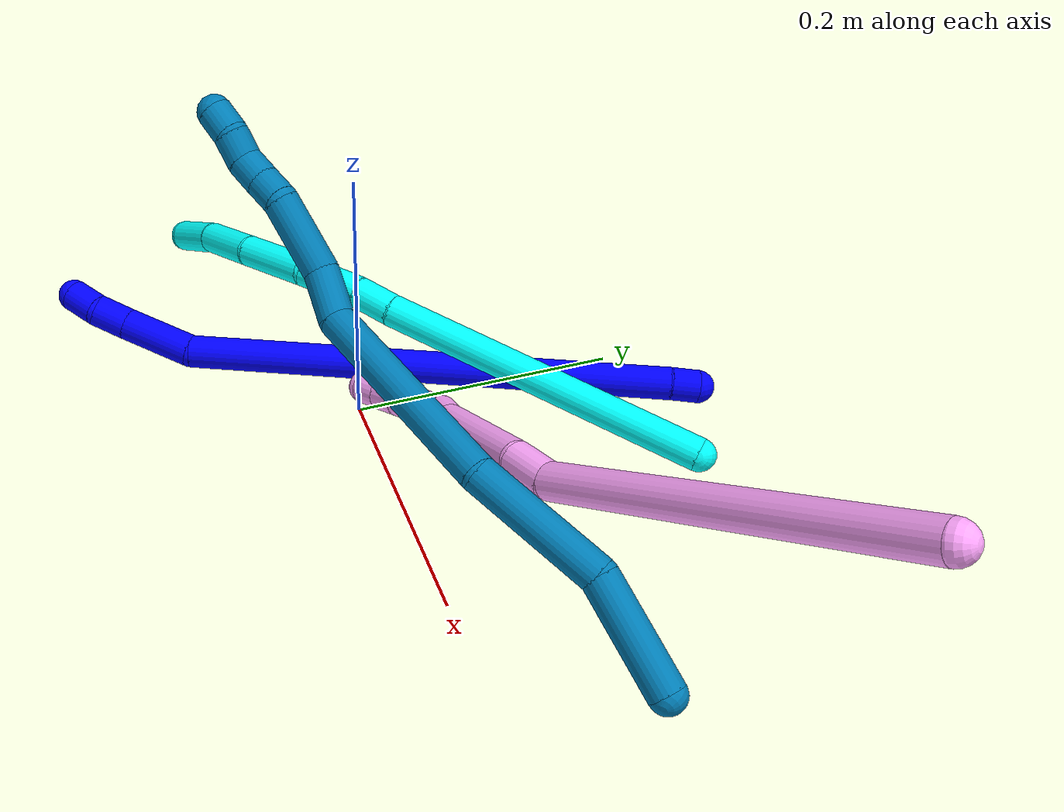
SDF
<sdf version="1.7">
 <world name="default">
  <model name="1">
   <static>0</static>
   <link name="1">
    <collision name="collision-cylinder-e_1_1_4">
     <pose>-0.003154 -0.008823 0.004397 1.10851 -0.309624 -0.192598</pose>
     <geometry><cylinder><radius>0.0125</radius><length>0.0207</length></cylinder></geometry>
     <surface>
      <friction><ode><mu>1.16</mu><mu2>1.16</mu2><slip1>0</slip1><slip2>0</slip2></ode></friction>
      <contact><ode><kp>1e+06</kp><kd>1</kd><max_vel>0</max_vel><min_depth>0.001</min_depth></ode></contact>
     </surface>
    </collision>
    <visual name="visual-cylinder-e_1_1_4">
     <pose>-0.003154 -0.008823 0.004397 1.10851 -0.309624 -0.192598</pose>
     <geometry><cylinder><radius>0.0125</radius><length>0.0207</length></cylinder></geometry>
     <material><ambient>0 0 1 1</ambient></material>
    </visual>
    <collision name="collision-cylinder-e_2_4_5">
     <pose>-0.07992 -0.168412 0.085722 1.09898 -0.410235 -0.253447</pose>
     <geometry><cylinder><radius>0.0125</radius><length>0.369146</length></cylinder></geometry>
     <surface>
      <friction><ode><mu>1.16</mu><mu2>1.16</mu2><slip1>0</slip1><slip2>0</slip2></ode></friction>
      <contact><ode><kp>1e+06</kp><kd>1</kd><max_vel>0</max_vel><min_depth>0.001</min_depth></ode></contact>
     </surface>
    </collision>
    <visual name="visual-cylinder-e_2_4_5">
     <pose>-0.07992 -0.168412 0.085722 1.09898 -0.410235 -0.253447</pose>
     <geometry><cylinder><radius>0.0125</radius><length>0.369146</length></cylinder></geometry>
     <material><ambient>0 0 1 1</ambient></material>
    </visual>
    <collision name="collision-cylinder-e_3_5_6">
     <pose>-0.164444 -0.336703 0.183015 0.710622 -0.385794 -0.144702</pose>
     <geometry><cylinder><radius>0.0125</radius><length>0.057996</length></cylinder></geometry>
     <surface>
      <friction><ode><mu>1.16</mu><mu2>1.16</mu2><slip1>0</slip1><slip2>0</slip2></ode></friction>
      <contact><ode><kp>1e+06</kp><kd>1</kd><max_vel>0</max_vel><min_depth>0.001</min_depth></ode></contact>
     </surface>
    </collision>
    <visual name="visual-cylinder-e_3_5_6">
     <pose>-0.164444 -0.336703 0.183015 0.710622 -0.385794 -0.144702</pose>
     <geometry><cylinder><radius>0.0125</radius><length>0.057996</length></cylinder></geometry>
     <material><ambient>0 0 1 1</ambient></material>
    </visual>
    <collision name="collision-cylinder-e_4_6_7">
     <pose>-0.177778 -0.363708 0.212545 0.802185 -0.181674 -0.077219</pose>
     <geometry><cylinder><radius>0.0125</radius><length>0.026814</length></cylinder></geometry>
     <surface>
      <friction><ode><mu>1.16</mu><mu2>1.16</mu2><slip1>0</slip1><slip2>0</slip2></ode></friction>
      <contact><ode><kp>1e+06</kp><kd>1</kd><max_vel>0</max_vel><min_depth>0.001</min_depth></ode></contact>
     </surface>
    </collision>
    <visual name="visual-cylinder-e_4_6_7">
     <pose>-0.177778 -0.363708 0.212545 0.802185 -0.181674 -0.077219</pose>
     <geometry><cylinder><radius>0.0125</radius><length>0.026814</length></cylinder></geometry>
     <material><ambient>0 0 1 1</ambient></material>
    </visual>
    <collision name="collision-cylinder-e_5_7_2">
     <pose>-0.18513 -0.378946 0.231866 0.515874 -0.399573 -0.106737</pose>
     <geometry><cylinder><radius>0.0125</radius><length>0.025344</length></cylinder></geometry>
     <surface>
      <friction><ode><mu>1.16</mu><mu2>1.16</mu2><slip1>0</slip1><slip2>0</slip2></ode></friction>
      <contact><ode><kp>1e+06</kp><kd>1</kd><max_vel>0</max_vel><min_depth>0.001</min_depth></ode></contact>
     </surface>
    </collision>
    <visual name="visual-cylinder-e_5_7_2">
     <pose>-0.18513 -0.378946 0.231866 0.515874 -0.399573 -0.106737</pose>
     <geometry><cylinder><radius>0.0125</radius><length>0.025344</length></cylinder></geometry>
     <material><ambient>0 0 1 1</ambient></material>
    </visual>
    <collision name="collision-sphere-2">
     <pose>-0.19006 -0.384704 0.242021 0 -0 0</pose>
     <geometry><sphere><radius>0.0125</radius></sphere></geometry>
     <surface>
      <friction><ode><mu>1.16</mu><mu2>1.16</mu2><slip1>0</slip1><slip2>0</slip2></ode></friction>
      <contact><ode><kp>1e+06</kp><kd>1</kd><max_vel>0</max_vel><min_depth>0.001</min_depth></ode></contact>
     </surface>
    </collision>
    <visual name="visual-sphere-2">
     <pose>-0.19006 -0.384704 0.242021 0 -0 0</pose>
     <geometry><sphere><radius>0.0125</radius></sphere></geometry>
     <material><ambient>0 0 1 1</ambient></material>
    </visual>
    <collision name="collision-sphere-7">
     <pose>-0.1802 -0.373187 0.221712 0 -0 0</pose>
     <geometry><sphere><radius>0.0125</radius></sphere></geometry>
     <surface>
      <friction><ode><mu>1.16</mu><mu2>1.16</mu2><slip1>0</slip1><slip2>0</slip2></ode></friction>
      <contact><ode><kp>1e+06</kp><kd>1</kd><max_vel>0</max_vel><min_depth>0.001</min_depth></ode></contact>
     </surface>
    </collision>
    <visual name="visual-sphere-7">
     <pose>-0.1802 -0.373187 0.221712 0 -0 0</pose>
     <geometry><sphere><radius>0.0125</radius></sphere></geometry>
     <material><ambient>0 0 1 1</ambient></material>
    </visual>
    <collision name="collision-sphere-6">
     <pose>-0.175356 -0.354228 0.203379 0 -0 0</pose>
     <geometry><sphere><radius>0.0125</radius></sphere></geometry>
     <surface>
      <friction><ode><mu>1.16</mu><mu2>1.16</mu2><slip1>0</slip1><slip2>0</slip2></ode></friction>
      <contact><ode><kp>1e+06</kp><kd>1</kd><max_vel>0</max_vel><min_depth>0.001</min_depth></ode></contact>
     </surface>
    </collision>
    <visual name="visual-sphere-6">
     <pose>-0.175356 -0.354228 0.203379 0 -0 0</pose>
     <geometry><sphere><radius>0.0125</radius></sphere></geometry>
     <material><ambient>0 0 1 1</ambient></material>
    </visual>
    <collision name="collision-sphere-5">
     <pose>-0.153532 -0.319178 0.162652 0 -0 0</pose>
     <geometry><sphere><radius>0.0125</radius></sphere></geometry>
     <surface>
      <friction><ode><mu>1.16</mu><mu2>1.16</mu2><slip1>0</slip1><slip2>0</slip2></ode></friction>
      <contact><ode><kp>1e+06</kp><kd>1</kd><max_vel>0</max_vel><min_depth>0.001</min_depth></ode></contact>
     </surface>
    </collision>
    <visual name="visual-sphere-5">
     <pose>-0.153532 -0.319178 0.162652 0 -0 0</pose>
     <geometry><sphere><radius>0.0125</radius></sphere></geometry>
     <material><ambient>0 0 1 1</ambient></material>
    </visual>
    <collision name="collision-sphere-1">
     <geometry><sphere><radius>0.0125</radius></sphere></geometry>
     <surface>
      <friction><ode><mu>1.16</mu><mu2>1.16</mu2><slip1>0</slip1><slip2>0</slip2></ode></friction>
      <contact><ode><kp>1e+06</kp><kd>1</kd><max_vel>0</max_vel><min_depth>0.001</min_depth></ode></contact>
     </surface>
    </collision>
    <visual name="visual-sphere-1">
     <geometry><sphere><radius>0.0125</radius></sphere></geometry>
     <material><ambient>0 0 1 1</ambient></material>
    </visual>
    <collision name="collision-sphere-4">
     <pose>-0.006307 -0.017646 0.008793 0 -0 0</pose>
     <geometry><sphere><radius>0.0125</radius></sphere></geometry>
     <surface>
      <friction><ode><mu>1.16</mu><mu2>1.16</mu2><slip1>0</slip1><slip2>0</slip2></ode></friction>
      <contact><ode><kp>1e+06</kp><kd>1</kd><max_vel>0</max_vel><min_depth>0.001</min_depth></ode></contact>
     </surface>
    </collision>
    <visual name="visual-sphere-4">
     <pose>-0.006307 -0.017646 0.008793 0 -0 0</pose>
     <geometry><sphere><radius>0.0125</radius></sphere></geometry>
     <material><ambient>0 0 1 1</ambient></material>
    </visual>
    <inertial>
     <pose>-0.097127 -0.20247 0.10785 0 -0 0</pose>
     <mass>0.5</mass>
     <inertia>
      <ixx>0.002772</ixx>
      <ixy>0</ixy>
      <ixz>0</ixz>
      <iyy>0.001244</iyy>
      <iyz>0</iyz>
      <izz>0.005157</izz>
     </inertia>
    </inertial>
   </link>
   <pose>0.064402 0.247692 0.011495 -0.297336 -1.01832 0.432797</pose>
  </model>
  <model name="3">
   <static>0</static>
   <link name="3">
    <collision name="collision-cylinder-e_1_1_4">
     <pose>-0.047762 -0.117275 0.005535 1.52363 -0.386363 -0.368968</pose>
     <geometry><cylinder><radius>0.0125</radius><length>0.253499</length></cylinder></geometry>
     <surface>
      <friction><ode><mu>1.16</mu><mu2>1.16</mu2><slip1>0</slip1><slip2>0</slip2></ode></friction>
      <contact><ode><kp>1e+06</kp><kd>1</kd><max_vel>0</max_vel><min_depth>0.001</min_depth></ode></contact>
     </surface>
    </collision>
    <visual name="visual-cylinder-e_1_1_4">
     <pose>-0.047762 -0.117275 0.005535 1.52363 -0.386363 -0.368968</pose>
     <geometry><cylinder><radius>0.0125</radius><length>0.253499</length></cylinder></geometry>
     <material><ambient>0.003922 1 0.996078 1</ambient></material>
    </visual>
    <collision name="collision-cylinder-e_2_4_5">
     <pose>-0.100873 -0.249283 0.013206 1.42684 -0.344972 -0.299314</pose>
     <geometry><cylinder><radius>0.0125</radius><length>0.031637</length></cylinder></geometry>
     <surface>
      <friction><ode><mu>1.16</mu><mu2>1.16</mu2><slip1>0</slip1><slip2>0</slip2></ode></friction>
      <contact><ode><kp>1e+06</kp><kd>1</kd><max_vel>0</max_vel><min_depth>0.001</min_depth></ode></contact>
     </surface>
    </collision>
    <visual name="visual-cylinder-e_2_4_5">
     <pose>-0.100873 -0.249283 0.013206 1.42684 -0.344972 -0.299314</pose>
     <geometry><cylinder><radius>0.0125</radius><length>0.031637</length></cylinder></geometry>
     <material><ambient>0.003922 1 0.996078 1</ambient></material>
    </visual>
    <collision name="collision-cylinder-e_3_5_6">
     <pose>-0.116837 -0.286062 0.017229 1.48538 -0.447291 -0.4117</pose>
     <geometry><cylinder><radius>0.0125</radius><length>0.049083</length></cylinder></geometry>
     <surface>
      <friction><ode><mu>1.16</mu><mu2>1.16</mu2><slip1>0</slip1><slip2>0</slip2></ode></friction>
      <contact><ode><kp>1e+06</kp><kd>1</kd><max_vel>0</max_vel><min_depth>0.001</min_depth></ode></contact>
     </surface>
    </collision>
    <visual name="visual-cylinder-e_3_5_6">
     <pose>-0.116837 -0.286062 0.017229 1.48538 -0.447291 -0.4117</pose>
     <geometry><cylinder><radius>0.0125</radius><length>0.049083</length></cylinder></geometry>
     <material><ambient>0.003922 1 0.996078 1</ambient></material>
    </visual>
    <collision name="collision-cylinder-e_4_6_7">
     <pose>-0.141863 -0.333016 0.030416 1.14489 -0.484948 -0.316126</pose>
     <geometry><cylinder><radius>0.0125</radius><length>0.061829</length></cylinder></geometry>
     <surface>
      <friction><ode><mu>1.16</mu><mu2>1.16</mu2><slip1>0</slip1><slip2>0</slip2></ode></friction>
      <contact><ode><kp>1e+06</kp><kd>1</kd><max_vel>0</max_vel><min_depth>0.001</min_depth></ode></contact>
     </surface>
    </collision>
    <visual name="visual-cylinder-e_4_6_7">
     <pose>-0.141863 -0.333016 0.030416 1.14489 -0.484948 -0.316126</pose>
     <geometry><cylinder><radius>0.0125</radius><length>0.061829</length></cylinder></geometry>
     <material><ambient>0.003922 1 0.996078 1</ambient></material>
    </visual>
    <collision name="collision-cylinder-e_5_7_8">
     <pose>-0.168846 -0.378027 0.056852 0.925435 -0.463289 -0.234253</pose>
     <geometry><cylinder><radius>0.0125</radius><length>0.056262</length></cylinder></geometry>
     <surface>
      <friction><ode><mu>1.16</mu><mu2>1.16</mu2><slip1>0</slip1><slip2>0</slip2></ode></friction>
      <contact><ode><kp>1e+06</kp><kd>1</kd><max_vel>0</max_vel><min_depth>0.001</min_depth></ode></contact>
     </surface>
    </collision>
    <visual name="visual-cylinder-e_5_7_8">
     <pose>-0.168846 -0.378027 0.056852 0.925435 -0.463289 -0.234253</pose>
     <geometry><cylinder><radius>0.0125</radius><length>0.056262</length></cylinder></geometry>
     <material><ambient>0.003922 1 0.996078 1</ambient></material>
    </visual>
    <collision name="collision-cylinder-e_6_8_2">
     <pose>-0.19454 -0.412566 0.085702 0.811017 -0.582737 -0.25609</pose>
     <geometry><cylinder><radius>0.0125</radius><length>0.04769</length></cylinder></geometry>
     <surface>
      <friction><ode><mu>1.16</mu><mu2>1.16</mu2><slip1>0</slip1><slip2>0</slip2></ode></friction>
      <contact><ode><kp>1e+06</kp><kd>1</kd><max_vel>0</max_vel><min_depth>0.001</min_depth></ode></contact>
     </surface>
    </collision>
    <visual name="visual-cylinder-e_6_8_2">
     <pose>-0.19454 -0.412566 0.085702 0.811017 -0.582737 -0.25609</pose>
     <geometry><cylinder><radius>0.0125</radius><length>0.04769</length></cylinder></geometry>
     <material><ambient>0.003922 1 0.996078 1</ambient></material>
    </visual>
    <collision name="collision-sphere-2">
     <pose>-0.207662 -0.427 0.099415 0 -0 0</pose>
     <geometry><sphere><radius>0.0125</radius></sphere></geometry>
     <surface>
      <friction><ode><mu>1.16</mu><mu2>1.16</mu2><slip1>0</slip1><slip2>0</slip2></ode></friction>
      <contact><ode><kp>1e+06</kp><kd>1</kd><max_vel>0</max_vel><min_depth>0.001</min_depth></ode></contact>
     </surface>
    </collision>
    <visual name="visual-sphere-2">
     <pose>-0.207662 -0.427 0.099415 0 -0 0</pose>
     <geometry><sphere><radius>0.0125</radius></sphere></geometry>
     <material><ambient>0.003922 1 0.996078 1</ambient></material>
    </visual>
    <collision name="collision-sphere-4">
     <pose>-0.095524 -0.234551 0.01107 0 -0 0</pose>
     <geometry><sphere><radius>0.0125</radius></sphere></geometry>
     <surface>
      <friction><ode><mu>1.16</mu><mu2>1.16</mu2><slip1>0</slip1><slip2>0</slip2></ode></friction>
      <contact><ode><kp>1e+06</kp><kd>1</kd><max_vel>0</max_vel><min_depth>0.001</min_depth></ode></contact>
     </surface>
    </collision>
    <visual name="visual-sphere-4">
     <pose>-0.095524 -0.234551 0.01107 0 -0 0</pose>
     <geometry><sphere><radius>0.0125</radius></sphere></geometry>
     <material><ambient>0.003922 1 0.996078 1</ambient></material>
    </visual>
    <collision name="collision-sphere-1">
     <geometry><sphere><radius>0.0125</radius></sphere></geometry>
     <surface>
      <friction><ode><mu>1.16</mu><mu2>1.16</mu2><slip1>0</slip1><slip2>0</slip2></ode></friction>
      <contact><ode><kp>1e+06</kp><kd>1</kd><max_vel>0</max_vel><min_depth>0.001</min_depth></ode></contact>
     </surface>
    </collision>
    <visual name="visual-sphere-1">
     <geometry><sphere><radius>0.0125</radius></sphere></geometry>
     <material><ambient>0.003922 1 0.996078 1</ambient></material>
    </visual>
    <collision name="collision-sphere-8">
     <pose>-0.181418 -0.398132 0.071989 0 -0 0</pose>
     <geometry><sphere><radius>0.0125</radius></sphere></geometry>
     <surface>
      <friction><ode><mu>1.16</mu><mu2>1.16</mu2><slip1>0</slip1><slip2>0</slip2></ode></friction>
      <contact><ode><kp>1e+06</kp><kd>1</kd><max_vel>0</max_vel><min_depth>0.001</min_depth></ode></contact>
     </surface>
    </collision>
    <visual name="visual-sphere-8">
     <pose>-0.181418 -0.398132 0.071989 0 -0 0</pose>
     <geometry><sphere><radius>0.0125</radius></sphere></geometry>
     <material><ambient>0.003922 1 0.996078 1</ambient></material>
    </visual>
    <collision name="collision-sphere-5">
     <pose>-0.106222 -0.264016 0.015341 0 -0 0</pose>
     <geometry><sphere><radius>0.0125</radius></sphere></geometry>
     <surface>
      <friction><ode><mu>1.16</mu><mu2>1.16</mu2><slip1>0</slip1><slip2>0</slip2></ode></friction>
      <contact><ode><kp>1e+06</kp><kd>1</kd><max_vel>0</max_vel><min_depth>0.001</min_depth></ode></contact>
     </surface>
    </collision>
    <visual name="visual-sphere-5">
     <pose>-0.106222 -0.264016 0.015341 0 -0 0</pose>
     <geometry><sphere><radius>0.0125</radius></sphere></geometry>
     <material><ambient>0.003922 1 0.996078 1</ambient></material>
    </visual>
    <collision name="collision-sphere-6">
     <pose>-0.127452 -0.308109 0.019117 0 -0 0</pose>
     <geometry><sphere><radius>0.0125</radius></sphere></geometry>
     <surface>
      <friction><ode><mu>1.16</mu><mu2>1.16</mu2><slip1>0</slip1><slip2>0</slip2></ode></friction>
      <contact><ode><kp>1e+06</kp><kd>1</kd><max_vel>0</max_vel><min_depth>0.001</min_depth></ode></contact>
     </surface>
    </collision>
    <visual name="visual-sphere-6">
     <pose>-0.127452 -0.308109 0.019117 0 -0 0</pose>
     <geometry><sphere><radius>0.0125</radius></sphere></geometry>
     <material><ambient>0.003922 1 0.996078 1</ambient></material>
    </visual>
    <collision name="collision-sphere-7">
     <pose>-0.156275 -0.357923 0.041716 0 -0 0</pose>
     <geometry><sphere><radius>0.0125</radius></sphere></geometry>
     <surface>
      <friction><ode><mu>1.16</mu><mu2>1.16</mu2><slip1>0</slip1><slip2>0</slip2></ode></friction>
      <contact><ode><kp>1e+06</kp><kd>1</kd><max_vel>0</max_vel><min_depth>0.001</min_depth></ode></contact>
     </surface>
    </collision>
    <visual name="visual-sphere-7">
     <pose>-0.156275 -0.357923 0.041716 0 -0 0</pose>
     <geometry><sphere><radius>0.0125</radius></sphere></geometry>
     <material><ambient>0.003922 1 0.996078 1</ambient></material>
    </visual>
    <inertial>
     <pose>-0.097164 -0.226381 0.023666 0 -0 0</pose>
     <mass>0.5</mass>
     <inertia>
      <ixx>0.000747</ixx>
      <ixy>0</ixy>
      <ixz>0</ixz>
      <iyy>-0.000226</iyy>
      <iyz>0</iyz>
      <izz>0.001869</izz>
     </inertia>
    </inertial>
   </link>
   <pose>0.132225 0.214219 0.011496 -2.43246 -0.773104 1.58792</pose>
  </model>
  <model name="4">
   <static>0</static>
   <link name="4">
    <collision name="collision-cylinder-e_1_1_4">
     <pose>-0.01844 -0.004862 -0.130784 3.10444 -0.139975 -2.62342</pose>
     <geometry><cylinder><radius>0.0125</radius><length>0.264334</length></cylinder></geometry>
     <surface>
      <friction><ode><mu>1.16</mu><mu2>1.16</mu2><slip1>0</slip1><slip2>0</slip2></ode></friction>
      <contact><ode><kp>1e+06</kp><kd>1</kd><max_vel>0</max_vel><min_depth>0.001</min_depth></ode></contact>
     </surface>
    </collision>
    <visual name="visual-cylinder-e_1_1_4">
     <pose>-0.01844 -0.004862 -0.130784 3.10444 -0.139975 -2.62342</pose>
     <geometry><cylinder><radius>0.0125</radius><length>0.264334</length></cylinder></geometry>
     <material><ambient>1 0.65098 0.996078 1</ambient></material>
    </visual>
    <collision name="collision-cylinder-e_2_4_5">
     <pose>-0.039247 -0.015658 -0.276804 2.77016 -0.143776 -0.732026</pose>
     <geometry><cylinder><radius>0.0125</radius><length>0.033043</length></cylinder></geometry>
     <surface>
      <friction><ode><mu>1.16</mu><mu2>1.16</mu2><slip1>0</slip1><slip2>0</slip2></ode></friction>
      <contact><ode><kp>1e+06</kp><kd>1</kd><max_vel>0</max_vel><min_depth>0.001</min_depth></ode></contact>
     </surface>
    </collision>
    <visual name="visual-cylinder-e_2_4_5">
     <pose>-0.039247 -0.015658 -0.276804 2.77016 -0.143776 -0.732026</pose>
     <geometry><cylinder><radius>0.0125</radius><length>0.033043</length></cylinder></geometry>
     <material><ambient>1 0.65098 0.996078 1</ambient></material>
    </visual>
    <collision name="collision-cylinder-e_3_5_6">
     <pose>-0.058869 -0.0329 -0.336305 2.89149 -0.361127 -1.93551</pose>
     <geometry><cylinder><radius>0.0125</radius><length>0.097675</length></cylinder></geometry>
     <surface>
      <friction><ode><mu>1.16</mu><mu2>1.16</mu2><slip1>0</slip1><slip2>0</slip2></ode></friction>
      <contact><ode><kp>1e+06</kp><kd>1</kd><max_vel>0</max_vel><min_depth>0.001</min_depth></ode></contact>
     </surface>
    </collision>
    <visual name="visual-cylinder-e_3_5_6">
     <pose>-0.058869 -0.0329 -0.336305 2.89149 -0.361127 -1.93551</pose>
     <geometry><cylinder><radius>0.0125</radius><length>0.097675</length></cylinder></geometry>
     <material><ambient>1 0.65098 0.996078 1</ambient></material>
    </visual>
    <collision name="collision-cylinder-e_4_6_7">
     <pose>-0.081125 -0.047482 -0.389715 2.79779 -0.475419 -1.89808</pose>
     <geometry><cylinder><radius>0.0125</radius><length>0.021847</length></cylinder></geometry>
     <surface>
      <friction><ode><mu>1.16</mu><mu2>1.16</mu2><slip1>0</slip1><slip2>0</slip2></ode></friction>
      <contact><ode><kp>1e+06</kp><kd>1</kd><max_vel>0</max_vel><min_depth>0.001</min_depth></ode></contact>
     </surface>
    </collision>
    <visual name="visual-cylinder-e_4_6_7">
     <pose>-0.081125 -0.047482 -0.389715 2.79779 -0.475419 -1.89808</pose>
     <geometry><cylinder><radius>0.0125</radius><length>0.021847</length></cylinder></geometry>
     <material><ambient>1 0.65098 0.996078 1</ambient></material>
    </visual>
    <collision name="collision-cylinder-e_5_7_8">
     <pose>-0.086396 -0.052563 -0.408747 2.96075 -0.027052 -0.296196</pose>
     <geometry><cylinder><radius>0.0125</radius><length>0.020111</length></cylinder></geometry>
     <surface>
      <friction><ode><mu>1.16</mu><mu2>1.16</mu2><slip1>0</slip1><slip2>0</slip2></ode></friction>
      <contact><ode><kp>1e+06</kp><kd>1</kd><max_vel>0</max_vel><min_depth>0.001</min_depth></ode></contact>
     </surface>
    </collision>
    <visual name="visual-cylinder-e_5_7_8">
     <pose>-0.086396 -0.052563 -0.408747 2.96075 -0.027052 -0.296196</pose>
     <geometry><cylinder><radius>0.0125</radius><length>0.020111</length></cylinder></geometry>
     <material><ambient>1 0.65098 0.996078 1</ambient></material>
    </visual>
    <collision name="collision-cylinder-e_6_8_9">
     <pose>-0.087123 -0.05643 -0.429714 2.95786 -0.040313 -0.430849</pose>
     <geometry><cylinder><radius>0.0125</radius><length>0.022557</length></cylinder></geometry>
     <surface>
      <friction><ode><mu>1.16</mu><mu2>1.16</mu2><slip1>0</slip1><slip2>0</slip2></ode></friction>
      <contact><ode><kp>1e+06</kp><kd>1</kd><max_vel>0</max_vel><min_depth>0.001</min_depth></ode></contact>
     </surface>
    </collision>
    <visual name="visual-cylinder-e_6_8_9">
     <pose>-0.087123 -0.05643 -0.429714 2.95786 -0.040313 -0.430849</pose>
     <geometry><cylinder><radius>0.0125</radius><length>0.022557</length></cylinder></geometry>
     <material><ambient>1 0.65098 0.996078 1</ambient></material>
    </visual>
    <collision name="collision-cylinder-e_7_9_10">
     <pose>-0.08855 -0.060448 -0.450659 2.94553 -0.096421 -0.912192</pose>
     <geometry><cylinder><radius>0.0125</radius><length>0.02021</length></cylinder></geometry>
     <surface>
      <friction><ode><mu>1.16</mu><mu2>1.16</mu2><slip1>0</slip1><slip2>0</slip2></ode></friction>
      <contact><ode><kp>1e+06</kp><kd>1</kd><max_vel>0</max_vel><min_depth>0.001</min_depth></ode></contact>
     </surface>
    </collision>
    <visual name="visual-cylinder-e_7_9_10">
     <pose>-0.08855 -0.060448 -0.450659 2.94553 -0.096421 -0.912192</pose>
     <geometry><cylinder><radius>0.0125</radius><length>0.02021</length></cylinder></geometry>
     <material><ambient>1 0.65098 0.996078 1</ambient></material>
    </visual>
    <collision name="collision-cylinder-e_8_10_2">
     <pose>-0.090146 -0.064574 -0.470382 2.92527 -0.061665 -0.553485</pose>
     <geometry><cylinder><radius>0.0125</radius><length>0.020225</length></cylinder></geometry>
     <surface>
      <friction><ode><mu>1.16</mu><mu2>1.16</mu2><slip1>0</slip1><slip2>0</slip2></ode></friction>
      <contact><ode><kp>1e+06</kp><kd>1</kd><max_vel>0</max_vel><min_depth>0.001</min_depth></ode></contact>
     </surface>
    </collision>
    <visual name="visual-cylinder-e_8_10_2">
     <pose>-0.090146 -0.064574 -0.470382 2.92527 -0.061665 -0.553485</pose>
     <geometry><cylinder><radius>0.0125</radius><length>0.020225</length></cylinder></geometry>
     <material><ambient>1 0.65098 0.996078 1</ambient></material>
    </visual>
    <collision name="collision-sphere-2">
     <pose>-0.090769 -0.06674 -0.48024 0 -0 0</pose>
     <geometry><sphere><radius>0.0125</radius></sphere></geometry>
     <surface>
      <friction><ode><mu>1.16</mu><mu2>1.16</mu2><slip1>0</slip1><slip2>0</slip2></ode></friction>
      <contact><ode><kp>1e+06</kp><kd>1</kd><max_vel>0</max_vel><min_depth>0.001</min_depth></ode></contact>
     </surface>
    </collision>
    <visual name="visual-sphere-2">
     <pose>-0.090769 -0.06674 -0.48024 0 -0 0</pose>
     <geometry><sphere><radius>0.0125</radius></sphere></geometry>
     <material><ambient>1 0.65098 0.996078 1</ambient></material>
    </visual>
    <collision name="collision-sphere-10">
     <pose>-0.089523 -0.062408 -0.460524 0 -0 0</pose>
     <geometry><sphere><radius>0.0125</radius></sphere></geometry>
     <surface>
      <friction><ode><mu>1.16</mu><mu2>1.16</mu2><slip1>0</slip1><slip2>0</slip2></ode></friction>
      <contact><ode><kp>1e+06</kp><kd>1</kd><max_vel>0</max_vel><min_depth>0.001</min_depth></ode></contact>
     </surface>
    </collision>
    <visual name="visual-sphere-10">
     <pose>-0.089523 -0.062408 -0.460524 0 -0 0</pose>
     <geometry><sphere><radius>0.0125</radius></sphere></geometry>
     <material><ambient>1 0.65098 0.996078 1</ambient></material>
    </visual>
    <collision name="collision-sphere-9">
     <pose>-0.087577 -0.058489 -0.440794 0 -0 0</pose>
     <geometry><sphere><radius>0.0125</radius></sphere></geometry>
     <surface>
      <friction><ode><mu>1.16</mu><mu2>1.16</mu2><slip1>0</slip1><slip2>0</slip2></ode></friction>
      <contact><ode><kp>1e+06</kp><kd>1</kd><max_vel>0</max_vel><min_depth>0.001</min_depth></ode></contact>
     </surface>
    </collision>
    <visual name="visual-sphere-9">
     <pose>-0.087577 -0.058489 -0.440794 0 -0 0</pose>
     <geometry><sphere><radius>0.0125</radius></sphere></geometry>
     <material><ambient>1 0.65098 0.996078 1</ambient></material>
    </visual>
    <collision name="collision-sphere-4">
     <pose>-0.036879 -0.009723 -0.261568 0 -0 0</pose>
     <geometry><sphere><radius>0.0125</radius></sphere></geometry>
     <surface>
      <friction><ode><mu>1.16</mu><mu2>1.16</mu2><slip1>0</slip1><slip2>0</slip2></ode></friction>
      <contact><ode><kp>1e+06</kp><kd>1</kd><max_vel>0</max_vel><min_depth>0.001</min_depth></ode></contact>
     </surface>
    </collision>
    <visual name="visual-sphere-4">
     <pose>-0.036879 -0.009723 -0.261568 0 -0 0</pose>
     <geometry><sphere><radius>0.0125</radius></sphere></geometry>
     <material><ambient>1 0.65098 0.996078 1</ambient></material>
    </visual>
    <collision name="collision-sphere-1">
     <geometry><sphere><radius>0.0125</radius></sphere></geometry>
     <surface>
      <friction><ode><mu>1.16</mu><mu2>1.16</mu2><slip1>0</slip1><slip2>0</slip2></ode></friction>
      <contact><ode><kp>1e+06</kp><kd>1</kd><max_vel>0</max_vel><min_depth>0.001</min_depth></ode></contact>
     </surface>
    </collision>
    <visual name="visual-sphere-1">
     <geometry><sphere><radius>0.0125</radius></sphere></geometry>
     <material><ambient>1 0.65098 0.996078 1</ambient></material>
    </visual>
    <collision name="collision-sphere-8">
     <pose>-0.086668 -0.054371 -0.418635 0 -0 0</pose>
     <geometry><sphere><radius>0.0125</radius></sphere></geometry>
     <surface>
      <friction><ode><mu>1.16</mu><mu2>1.16</mu2><slip1>0</slip1><slip2>0</slip2></ode></friction>
      <contact><ode><kp>1e+06</kp><kd>1</kd><max_vel>0</max_vel><min_depth>0.001</min_depth></ode></contact>
     </surface>
    </collision>
    <visual name="visual-sphere-8">
     <pose>-0.086668 -0.054371 -0.418635 0 -0 0</pose>
     <geometry><sphere><radius>0.0125</radius></sphere></geometry>
     <material><ambient>1 0.65098 0.996078 1</ambient></material>
    </visual>
    <collision name="collision-sphere-5">
     <pose>-0.041614 -0.021592 -0.29204 0 -0 0</pose>
     <geometry><sphere><radius>0.0125</radius></sphere></geometry>
     <surface>
      <friction><ode><mu>1.16</mu><mu2>1.16</mu2><slip1>0</slip1><slip2>0</slip2></ode></friction>
      <contact><ode><kp>1e+06</kp><kd>1</kd><max_vel>0</max_vel><min_depth>0.001</min_depth></ode></contact>
     </surface>
    </collision>
    <visual name="visual-sphere-5">
     <pose>-0.041614 -0.021592 -0.29204 0 -0 0</pose>
     <geometry><sphere><radius>0.0125</radius></sphere></geometry>
     <material><ambient>1 0.65098 0.996078 1</ambient></material>
    </visual>
    <collision name="collision-sphere-6">
     <pose>-0.076125 -0.044208 -0.380571 0 -0 0</pose>
     <geometry><sphere><radius>0.0125</radius></sphere></geometry>
     <surface>
      <friction><ode><mu>1.16</mu><mu2>1.16</mu2><slip1>0</slip1><slip2>0</slip2></ode></friction>
      <contact><ode><kp>1e+06</kp><kd>1</kd><max_vel>0</max_vel><min_depth>0.001</min_depth></ode></contact>
     </surface>
    </collision>
    <visual name="visual-sphere-6">
     <pose>-0.076125 -0.044208 -0.380571 0 -0 0</pose>
     <geometry><sphere><radius>0.0125</radius></sphere></geometry>
     <material><ambient>1 0.65098 0.996078 1</ambient></material>
    </visual>
    <collision name="collision-sphere-7">
     <pose>-0.086124 -0.050755 -0.398858 0 -0 0</pose>
     <geometry><sphere><radius>0.0125</radius></sphere></geometry>
     <surface>
      <friction><ode><mu>1.16</mu><mu2>1.16</mu2><slip1>0</slip1><slip2>0</slip2></ode></friction>
      <contact><ode><kp>1e+06</kp><kd>1</kd><max_vel>0</max_vel><min_depth>0.001</min_depth></ode></contact>
     </surface>
    </collision>
    <visual name="visual-sphere-7">
     <pose>-0.086124 -0.050755 -0.398858 0 -0 0</pose>
     <geometry><sphere><radius>0.0125</radius></sphere></geometry>
     <material><ambient>1 0.65098 0.996078 1</ambient></material>
    </visual>
    <inertial>
     <pose>-0.042018 -0.021822 -0.243227 0 -0 0</pose>
     <mass>0.5</mass>
     <inertia>
      <ixx>-0.002198</ixx>
      <ixy>0</ixy>
      <ixz>0</ixz>
      <iyy>0.000533</iyy>
      <iyz>0</iyz>
      <izz>0.000288</izz>
     </inertia>
    </inertial>
   </link>
   <pose>0.40656 0.170868 0.217334 -1.0375 -0.581737 -1.2595</pose>
  </model>
  <model name="9">
   <static>0</static>
   <link name="9">
    <collision name="collision-cylinder-e_1_1_4">
     <pose>-0.006938 0.034312 -0.01748 -2.04198 -0.178252 0.289594</pose>
     <geometry><cylinder><radius>0.0125</radius><length>0.078256</length></cylinder></geometry>
     <surface>
      <friction><ode><mu>1.16</mu><mu2>1.16</mu2><slip1>0</slip1><slip2>0</slip2></ode></friction>
      <contact><ode><kp>1e+06</kp><kd>1</kd><max_vel>0</max_vel><min_depth>0.001</min_depth></ode></contact>
     </surface>
    </collision>
    <visual name="visual-cylinder-e_1_1_4">
     <pose>-0.006938 0.034312 -0.01748 -2.04198 -0.178252 0.289594</pose>
     <geometry><cylinder><radius>0.0125</radius><length>0.078256</length></cylinder></geometry>
     <material><ambient>0 0.490196 0.709804 1</ambient></material>
    </visual>
    <collision name="collision-cylinder-e_2_4_5">
     <pose>-0.036007 0.10919 -0.046156 -1.84007 -0.484161 0.627191</pose>
     <geometry><cylinder><radius>0.0125</radius><length>0.095093</length></cylinder></geometry>
     <surface>
      <friction><ode><mu>1.16</mu><mu2>1.16</mu2><slip1>0</slip1><slip2>0</slip2></ode></friction>
      <contact><ode><kp>1e+06</kp><kd>1</kd><max_vel>0</max_vel><min_depth>0.001</min_depth></ode></contact>
     </surface>
    </collision>
    <visual name="visual-cylinder-e_2_4_5">
     <pose>-0.036007 0.10919 -0.046156 -1.84007 -0.484161 0.627191</pose>
     <geometry><cylinder><radius>0.0125</radius><length>0.095093</length></cylinder></geometry>
     <material><ambient>0 0.490196 0.709804 1</ambient></material>
    </visual>
    <collision name="collision-cylinder-e_3_5_6">
     <pose>-0.098217 0.203627 -0.093006 -2.15546 -0.555276 0.975335</pose>
     <geometry><cylinder><radius>0.0125</radius><length>0.15205</length></cylinder></geometry>
     <surface>
      <friction><ode><mu>1.16</mu><mu2>1.16</mu2><slip1>0</slip1><slip2>0</slip2></ode></friction>
      <contact><ode><kp>1e+06</kp><kd>1</kd><max_vel>0</max_vel><min_depth>0.001</min_depth></ode></contact>
     </surface>
    </collision>
    <visual name="visual-cylinder-e_3_5_6">
     <pose>-0.098217 0.203627 -0.093006 -2.15546 -0.555276 0.975335</pose>
     <geometry><cylinder><radius>0.0125</radius><length>0.15205</length></cylinder></geometry>
     <material><ambient>0 0.490196 0.709804 1</ambient></material>
    </visual>
    <collision name="collision-cylinder-e_4_6_7">
     <pose>-0.140348 0.271767 -0.13997 -2.24099 -0.112257 0.231419</pose>
     <geometry><cylinder><radius>0.0125</radius><length>0.036643</length></cylinder></geometry>
     <surface>
      <friction><ode><mu>1.16</mu><mu2>1.16</mu2><slip1>0</slip1><slip2>0</slip2></ode></friction>
      <contact><ode><kp>1e+06</kp><kd>1</kd><max_vel>0</max_vel><min_depth>0.001</min_depth></ode></contact>
     </surface>
    </collision>
    <visual name="visual-cylinder-e_4_6_7">
     <pose>-0.140348 0.271767 -0.13997 -2.24099 -0.112257 0.231419</pose>
     <geometry><cylinder><radius>0.0125</radius><length>0.036643</length></cylinder></geometry>
     <material><ambient>0 0.490196 0.709804 1</ambient></material>
    </visual>
    <collision name="collision-cylinder-e_5_7_8">
     <pose>-0.144041 0.312273 -0.160218 -1.89917 -0.059107 0.082559</pose>
     <geometry><cylinder><radius>0.0125</radius><length>0.055536</length></cylinder></geometry>
     <surface>
      <friction><ode><mu>1.16</mu><mu2>1.16</mu2><slip1>0</slip1><slip2>0</slip2></ode></friction>
      <contact><ode><kp>1e+06</kp><kd>1</kd><max_vel>0</max_vel><min_depth>0.001</min_depth></ode></contact>
     </surface>
    </collision>
    <visual name="visual-cylinder-e_5_7_8">
     <pose>-0.144041 0.312273 -0.160218 -1.89917 -0.059107 0.082559</pose>
     <geometry><cylinder><radius>0.0125</radius><length>0.055536</length></cylinder></geometry>
     <material><ambient>0 0.490196 0.709804 1</ambient></material>
    </visual>
    <collision name="collision-cylinder-e_6_8_9">
     <pose>-0.150403 0.346508 -0.173491 -2.0674 -0.478875 0.778108</pose>
     <geometry><cylinder><radius>0.0125</radius><length>0.020496</length></cylinder></geometry>
     <surface>
      <friction><ode><mu>1.16</mu><mu2>1.16</mu2><slip1>0</slip1><slip2>0</slip2></ode></friction>
      <contact><ode><kp>1e+06</kp><kd>1</kd><max_vel>0</max_vel><min_depth>0.001</min_depth></ode></contact>
     </surface>
    </collision>
    <visual name="visual-cylinder-e_6_8_9">
     <pose>-0.150403 0.346508 -0.173491 -2.0674 -0.478875 0.778108</pose>
     <geometry><cylinder><radius>0.0125</radius><length>0.020496</length></cylinder></geometry>
     <material><ambient>0 0.490196 0.709804 1</ambient></material>
    </visual>
    <collision name="collision-cylinder-e_7_9_10">
     <pose>-0.159064 0.363484 -0.181535 -1.96261 -0.38523 0.567478</pose>
     <geometry><cylinder><radius>0.0125</radius><length>0.020967</length></cylinder></geometry>
     <surface>
      <friction><ode><mu>1.16</mu><mu2>1.16</mu2><slip1>0</slip1><slip2>0</slip2></ode></friction>
      <contact><ode><kp>1e+06</kp><kd>1</kd><max_vel>0</max_vel><min_depth>0.001</min_depth></ode></contact>
     </surface>
    </collision>
    <visual name="visual-cylinder-e_7_9_10">
     <pose>-0.159064 0.363484 -0.181535 -1.96261 -0.38523 0.567478</pose>
     <geometry><cylinder><radius>0.0125</radius><length>0.020967</length></cylinder></geometry>
     <material><ambient>0 0.490196 0.709804 1</ambient></material>
    </visual>
    <collision name="collision-cylinder-e_8_10_11">
     <pose>-0.162901 0.382241 -0.188555 -1.89722 0.009916 -0.013825</pose>
     <geometry><cylinder><radius>0.0125</radius><length>0.020647</length></cylinder></geometry>
     <surface>
      <friction><ode><mu>1.16</mu><mu2>1.16</mu2><slip1>0</slip1><slip2>0</slip2></ode></friction>
      <contact><ode><kp>1e+06</kp><kd>1</kd><max_vel>0</max_vel><min_depth>0.001</min_depth></ode></contact>
     </surface>
    </collision>
    <visual name="visual-cylinder-e_8_10_11">
     <pose>-0.162901 0.382241 -0.188555 -1.89722 0.009916 -0.013825</pose>
     <geometry><cylinder><radius>0.0125</radius><length>0.020647</length></cylinder></geometry>
     <material><ambient>0 0.490196 0.709804 1</ambient></material>
    </visual>
    <collision name="collision-cylinder-e_9_11_2">
     <pose>-0.165663 0.400964 -0.195728 -1.97846 -0.285849 0.431</pose>
     <geometry><cylinder><radius>0.0125</radius><length>0.020312</length></cylinder></geometry>
     <surface>
      <friction><ode><mu>1.16</mu><mu2>1.16</mu2><slip1>0</slip1><slip2>0</slip2></ode></friction>
      <contact><ode><kp>1e+06</kp><kd>1</kd><max_vel>0</max_vel><min_depth>0.001</min_depth></ode></contact>
     </surface>
    </collision>
    <visual name="visual-cylinder-e_9_11_2">
     <pose>-0.165663 0.400964 -0.195728 -1.97846 -0.285849 0.431</pose>
     <geometry><cylinder><radius>0.0125</radius><length>0.020312</length></cylinder></geometry>
     <material><ambient>0 0.490196 0.709804 1</ambient></material>
    </visual>
    <collision name="collision-sphere-2">
     <pose>-0.168526 0.409909 -0.199591 0 -0 0</pose>
     <geometry><sphere><radius>0.0125</radius></sphere></geometry>
     <surface>
      <friction><ode><mu>1.16</mu><mu2>1.16</mu2><slip1>0</slip1><slip2>0</slip2></ode></friction>
      <contact><ode><kp>1e+06</kp><kd>1</kd><max_vel>0</max_vel><min_depth>0.001</min_depth></ode></contact>
     </surface>
    </collision>
    <visual name="visual-sphere-2">
     <pose>-0.168526 0.409909 -0.199591 0 -0 0</pose>
     <geometry><sphere><radius>0.0125</radius></sphere></geometry>
     <material><ambient>0 0.490196 0.709804 1</ambient></material>
    </visual>
    <collision name="collision-sphere-11">
     <pose>-0.162799 0.392018 -0.191865 0 -0 0</pose>
     <geometry><sphere><radius>0.0125</radius></sphere></geometry>
     <surface>
      <friction><ode><mu>1.16</mu><mu2>1.16</mu2><slip1>0</slip1><slip2>0</slip2></ode></friction>
      <contact><ode><kp>1e+06</kp><kd>1</kd><max_vel>0</max_vel><min_depth>0.001</min_depth></ode></contact>
     </surface>
    </collision>
    <visual name="visual-sphere-11">
     <pose>-0.162799 0.392018 -0.191865 0 -0 0</pose>
     <geometry><sphere><radius>0.0125</radius></sphere></geometry>
     <material><ambient>0 0.490196 0.709804 1</ambient></material>
    </visual>
    <collision name="collision-sphere-10">
     <pose>-0.163004 0.372463 -0.185245 0 -0 0</pose>
     <geometry><sphere><radius>0.0125</radius></sphere></geometry>
     <surface>
      <friction><ode><mu>1.16</mu><mu2>1.16</mu2><slip1>0</slip1><slip2>0</slip2></ode></friction>
      <contact><ode><kp>1e+06</kp><kd>1</kd><max_vel>0</max_vel><min_depth>0.001</min_depth></ode></contact>
     </surface>
    </collision>
    <visual name="visual-sphere-10">
     <pose>-0.163004 0.372463 -0.185245 0 -0 0</pose>
     <geometry><sphere><radius>0.0125</radius></sphere></geometry>
     <material><ambient>0 0.490196 0.709804 1</ambient></material>
    </visual>
    <collision name="collision-sphere-9">
     <pose>-0.155125 0.354505 -0.177825 0 -0 0</pose>
     <geometry><sphere><radius>0.0125</radius></sphere></geometry>
     <surface>
      <friction><ode><mu>1.16</mu><mu2>1.16</mu2><slip1>0</slip1><slip2>0</slip2></ode></friction>
      <contact><ode><kp>1e+06</kp><kd>1</kd><max_vel>0</max_vel><min_depth>0.001</min_depth></ode></contact>
     </surface>
    </collision>
    <visual name="visual-sphere-9">
     <pose>-0.155125 0.354505 -0.177825 0 -0 0</pose>
     <geometry><sphere><radius>0.0125</radius></sphere></geometry>
     <material><ambient>0 0.490196 0.709804 1</ambient></material>
    </visual>
    <collision name="collision-sphere-4">
     <pose>-0.013876 0.068624 -0.034961 0 -0 0</pose>
     <geometry><sphere><radius>0.0125</radius></sphere></geometry>
     <surface>
      <friction><ode><mu>1.16</mu><mu2>1.16</mu2><slip1>0</slip1><slip2>0</slip2></ode></friction>
      <contact><ode><kp>1e+06</kp><kd>1</kd><max_vel>0</max_vel><min_depth>0.001</min_depth></ode></contact>
     </surface>
    </collision>
    <visual name="visual-sphere-4">
     <pose>-0.013876 0.068624 -0.034961 0 -0 0</pose>
     <geometry><sphere><radius>0.0125</radius></sphere></geometry>
     <material><ambient>0 0.490196 0.709804 1</ambient></material>
    </visual>
    <collision name="collision-sphere-1">
     <geometry><sphere><radius>0.0125</radius></sphere></geometry>
     <surface>
      <friction><ode><mu>1.16</mu><mu2>1.16</mu2><slip1>0</slip1><slip2>0</slip2></ode></friction>
      <contact><ode><kp>1e+06</kp><kd>1</kd><max_vel>0</max_vel><min_depth>0.001</min_depth></ode></contact>
     </surface>
    </collision>
    <visual name="visual-sphere-1">
     <geometry><sphere><radius>0.0125</radius></sphere></geometry>
     <material><ambient>0 0.490196 0.709804 1</ambient></material>
    </visual>
    <collision name="collision-sphere-8">
     <pose>-0.145681 0.338512 -0.169158 0 -0 0</pose>
     <geometry><sphere><radius>0.0125</radius></sphere></geometry>
     <surface>
      <friction><ode><mu>1.16</mu><mu2>1.16</mu2><slip1>0</slip1><slip2>0</slip2></ode></friction>
      <contact><ode><kp>1e+06</kp><kd>1</kd><max_vel>0</max_vel><min_depth>0.001</min_depth></ode></contact>
     </surface>
    </collision>
    <visual name="visual-sphere-8">
     <pose>-0.145681 0.338512 -0.169158 0 -0 0</pose>
     <geometry><sphere><radius>0.0125</radius></sphere></geometry>
     <material><ambient>0 0.490196 0.709804 1</ambient></material>
    </visual>
    <collision name="collision-sphere-5">
     <pose>-0.058138 0.149755 -0.057351 0 -0 0</pose>
     <geometry><sphere><radius>0.0125</radius></sphere></geometry>
     <surface>
      <friction><ode><mu>1.16</mu><mu2>1.16</mu2><slip1>0</slip1><slip2>0</slip2></ode></friction>
      <contact><ode><kp>1e+06</kp><kd>1</kd><max_vel>0</max_vel><min_depth>0.001</min_depth></ode></contact>
     </surface>
    </collision>
    <visual name="visual-sphere-5">
     <pose>-0.058138 0.149755 -0.057351 0 -0 0</pose>
     <geometry><sphere><radius>0.0125</radius></sphere></geometry>
     <material><ambient>0 0.490196 0.709804 1</ambient></material>
    </visual>
    <collision name="collision-sphere-6">
     <pose>-0.138295 0.257499 -0.128662 0 -0 0</pose>
     <geometry><sphere><radius>0.0125</radius></sphere></geometry>
     <surface>
      <friction><ode><mu>1.16</mu><mu2>1.16</mu2><slip1>0</slip1><slip2>0</slip2></ode></friction>
      <contact><ode><kp>1e+06</kp><kd>1</kd><max_vel>0</max_vel><min_depth>0.001</min_depth></ode></contact>
     </surface>
    </collision>
    <visual name="visual-sphere-6">
     <pose>-0.138295 0.257499 -0.128662 0 -0 0</pose>
     <geometry><sphere><radius>0.0125</radius></sphere></geometry>
     <material><ambient>0 0.490196 0.709804 1</ambient></material>
    </visual>
    <collision name="collision-sphere-7">
     <pose>-0.1424 0.286035 -0.151279 0 -0 0</pose>
     <geometry><sphere><radius>0.0125</radius></sphere></geometry>
     <surface>
      <friction><ode><mu>1.16</mu><mu2>1.16</mu2><slip1>0</slip1><slip2>0</slip2></ode></friction>
      <contact><ode><kp>1e+06</kp><kd>1</kd><max_vel>0</max_vel><min_depth>0.001</min_depth></ode></contact>
     </surface>
    </collision>
    <visual name="visual-sphere-7">
     <pose>-0.1424 0.286035 -0.151279 0 -0 0</pose>
     <geometry><sphere><radius>0.0125</radius></sphere></geometry>
     <material><ambient>0 0.490196 0.709804 1</ambient></material>
    </visual>
    <inertial>
     <pose>-0.090378 0.20418 -0.098312 0 -0 0</pose>
     <mass>0.5</mass>
     <inertia>
      <ixx>0.000517</ixx>
      <ixy>0</ixy>
      <ixz>0</ixz>
      <iyy>0.000292</iyy>
      <iyz>0</iyz>
      <izz>-0.000151</izz>
     </inertia>
    </inertial>
   </link>
   <pose>0.326162 0.090943 0.030686 1.60582 -0.764091 0.795226</pose>
  </model>
 </world>
</sdf>
